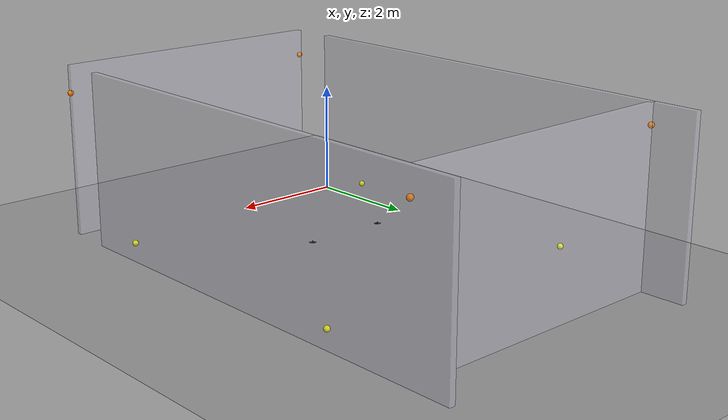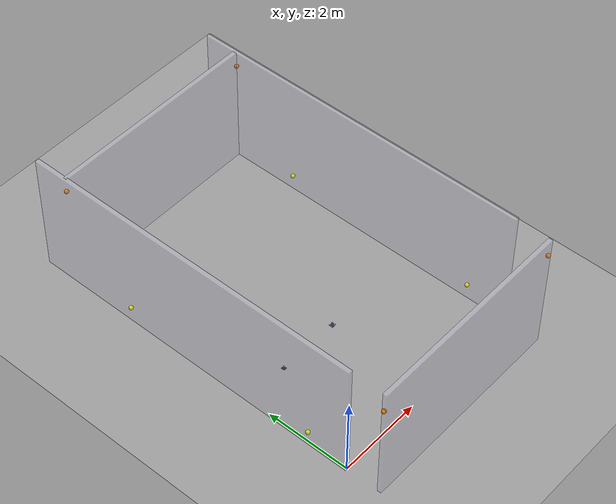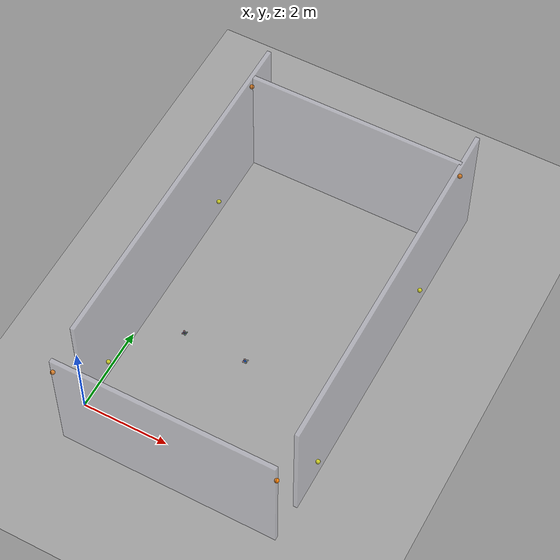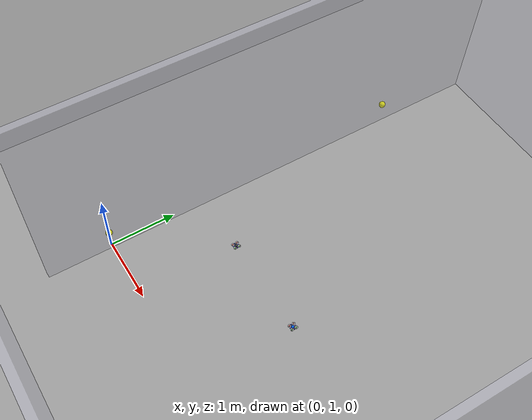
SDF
<?xml version="1.0" ?>
<sdf version="1.9">
  <world name="cf_lab">

    <physics name="1ms" type="ignored">
      <max_step_size>0.001</max_step_size>
      <real_time_factor>1.0</real_time_factor>
    </physics>

    <plugin filename="ignition-gazebo-physics-system"
            name="ignition::gazebo::systems::Physics"/>
    <plugin filename="ignition-gazebo-user-commands-system"
            name="ignition::gazebo::systems::UserCommands"/>
    <plugin filename="ignition-gazebo-scene-broadcaster-system"
            name="ignition::gazebo::systems::SceneBroadcaster"/>

    <!-- Use a single directional light with unique name -->
    <light name="directional_light_1" type="directional">
      <cast_shadows>false</cast_shadows>
      <pose>0 0 10 0 0 0</pose>
      <diffuse>0.8 0.8 0.8 1</diffuse>
      <specular>0.2 0.2 0.2 1</specular>
      <direction>-0.5 0.1 -0.9</direction>
    </light>

    <!-- Floor -->
    <model name="ground_plane">
      <static>true</static>
      <link name="link">
        <collision name="collision">
          <geometry>
            <plane><normal>0 0 1</normal><size>20 20</size></plane>
          </geometry>
        </collision>
        <visual name="visual">
          <geometry>
            <plane><normal>0 0 1</normal><size>20 20</size></plane>
          </geometry>
          <material>
            <ambient>0.4 0.4 0.4 1</ambient>
            <diffuse>0.6 0.6 0.6 1</diffuse>
          </material>
        </visual>
      </link>
    </model>

    <!-- Crazyflie cf231 -->
    <!-- static=false + gravity=false = kinematic body -->
    <!-- set_pose works AND gravity doesn't pull it down -->
    <!-- B-419 walls + 8 LPS anchors (real coordinates), added to match cf_lab.sdf -->
    <model name="wall_x0">
      <static>true</static>
      <pose>0 4.1 1.5 0 0 0</pose>
      <link name="link">
        <collision name="col"><geometry><box><size>0.1 8.2 3.0</size></box></geometry></collision>
        <visual name="vis">
          <geometry><box><size>0.1 8.2 3.0</size></box></geometry>
          <material><ambient>0.8 0.8 0.9 0.3</ambient><diffuse>0.8 0.8 0.9 0.3</diffuse></material>
        </visual>
      </link>
    </model>
    <model name="wall_x5">
      <static>true</static>
      <pose>5.04 4.1 1.5 0 0 0</pose>
      <link name="link">
        <collision name="col"><geometry><box><size>0.1 8.2 3.0</size></box></geometry></collision>
        <visual name="vis">
          <geometry><box><size>0.1 8.2 3.0</size></box></geometry>
          <material><ambient>0.8 0.8 0.9 0.3</ambient><diffuse>0.8 0.8 0.9 0.3</diffuse></material>
        </visual>
      </link>
    </model>
    <model name="wall_yn08">
      <static>true</static>
      <pose>2.52 -0.8 1.5 0 0 0</pose>
      <link name="link">
        <collision name="col"><geometry><box><size>5.04 0.1 3.0</size></box></geometry></collision>
        <visual name="vis">
          <geometry><box><size>5.04 0.1 3.0</size></box></geometry>
          <material><ambient>0.8 0.8 0.9 0.3</ambient><diffuse>0.8 0.8 0.9 0.3</diffuse></material>
        </visual>
      </link>
    </model>
    <model name="wall_y74">
      <static>true</static>
      <pose>2.52 7.4 1.5 0 0 0</pose>
      <link name="link">
        <collision name="col"><geometry><box><size>5.04 0.1 3.0</size></box></geometry></collision>
        <visual name="vis">
          <geometry><box><size>5.04 0.1 3.0</size></box></geometry>
          <material><ambient>0.8 0.8 0.9 0.3</ambient><diffuse>0.8 0.8 0.9 0.3</diffuse></material>
        </visual>
      </link>
    </model>
    <model name="anchor_0"><static>true</static><pose>0.0 1.0 0.3 0 0 0</pose>
      <link name="link"><visual name="vis"><geometry><sphere><radius>0.05</radius></sphere></geometry>
      <material><ambient>1 1 0 1</ambient><diffuse>1 1 0 1</diffuse></material></visual></link></model>
    <model name="anchor_1"><static>true</static><pose>0.0 7.4 2.64 0 0 0</pose>
      <link name="link"><visual name="vis"><geometry><sphere><radius>0.05</radius></sphere></geometry>
      <material><ambient>1 0.5 0 1</ambient><diffuse>1 0.5 0 1</diffuse></material></visual></link></model>
    <model name="anchor_2"><static>true</static><pose>5.04 5.8 0.3 0 0 0</pose>
      <link name="link"><visual name="vis"><geometry><sphere><radius>0.05</radius></sphere></geometry>
      <material><ambient>1 1 0 1</ambient><diffuse>1 1 0 1</diffuse></material></visual></link></model>
    <model name="anchor_3"><static>true</static><pose>5.04 -0.8 2.52 0 0 0</pose>
      <link name="link"><visual name="vis"><geometry><sphere><radius>0.05</radius></sphere></geometry>
      <material><ambient>1 0.5 0 1</ambient><diffuse>1 0.5 0 1</diffuse></material></visual></link></model>
    <model name="anchor_4"><static>true</static><pose>0.0 -0.8 2.52 0 0 0</pose>
      <link name="link"><visual name="vis"><geometry><sphere><radius>0.05</radius></sphere></geometry>
      <material><ambient>1 0.5 0 1</ambient><diffuse>1 0.5 0 1</diffuse></material></visual></link></model>
    <model name="anchor_5"><static>true</static><pose>0.0 5.8 0.3 0 0 0</pose>
      <link name="link"><visual name="vis"><geometry><sphere><radius>0.05</radius></sphere></geometry>
      <material><ambient>1 1 0 1</ambient><diffuse>1 1 0 1</diffuse></material></visual></link></model>
    <model name="anchor_6"><static>true</static><pose>5.04 7.4 2.57 0 0 0</pose>
      <link name="link"><visual name="vis"><geometry><sphere><radius>0.05</radius></sphere></geometry>
      <material><ambient>1 0.5 0 1</ambient><diffuse>1 0.5 0 1</diffuse></material></visual></link></model>
    <model name="anchor_7"><static>true</static><pose>5.04 1.0 0.3 0 0 0</pose>
      <link name="link"><visual name="vis"><geometry><sphere><radius>0.05</radius></sphere></geometry>
      <material><ambient>1 1 0 1</ambient><diffuse>1 1 0 1</diffuse></material></visual></link></model>

    <model name="cf231">
      <pose>1.0 2.5 0.1 0 0 0</pose>
      <static>false</static>
      <link name="base_link">
        <inertial>
          <mass>0.027</mass>
          <inertia>
            <ixx>1.657e-5</ixx><iyy>1.657e-5</iyy><izz>2.9e-5</izz>
            <ixy>0</ixy><ixz>0</ixz><iyz>0</iyz>
          </inertia>
        </inertial>

        <!-- Disable gravity on this link -->
        <gravity>false</gravity>

        <!-- Centre body - dark grey -->
        <visual name="body">
          <pose>0 0 0 0 0 0</pose>
          <geometry><box><size>0.032 0.032 0.016</size></box></geometry>
          <material>
            <ambient>0.15 0.15 0.15 1</ambient>
            <diffuse>0.25 0.25 0.25 1</diffuse>
          </material>
        </visual>

        <!-- Arm along X axis - blue -->
        <visual name="arm_x">
          <pose>0 0 0 0 0 0</pose>
          <geometry><box><size>0.095 0.007 0.003</size></box></geometry>
          <material>
            <ambient>0.05 0.05 0.7 1</ambient>
            <diffuse>0.1 0.1 0.9 1</diffuse>
          </material>
        </visual>

        <!-- Arm along Y axis - blue -->
        <visual name="arm_y">
          <pose>0 0 0 0 0 0</pose>
          <geometry><box><size>0.007 0.095 0.003</size></box></geometry>
          <material>
            <ambient>0.05 0.05 0.7 1</ambient>
            <diffuse>0.1 0.1 0.9 1</diffuse>
          </material>
        </visual>

        <!-- Motor FL (+x+y) - green = FRONT -->
        <visual name="motor_fl">
          <pose>0.0335 0.0335 0.005 0 0 0</pose>
          <geometry><cylinder><radius>0.010</radius><length>0.007</length></cylinder></geometry>
          <material><ambient>0.0 0.7 0.0 1</ambient><diffuse>0.0 0.9 0.0 1</diffuse></material>
        </visual>

        <!-- Propeller FL -->
        <visual name="prop_fl">
          <pose>0.0335 0.0335 0.010 0 0 0</pose>
          <geometry><cylinder><radius>0.023</radius><length>0.001</length></cylinder></geometry>
          <material><ambient>0.7 0.7 0.7 0.5</ambient><diffuse>0.8 0.8 0.8 0.5</diffuse></material>
        </visual>

        <!-- Motor FR (+x-y) - green = FRONT -->
        <visual name="motor_fr">
          <pose>0.0335 -0.0335 0.005 0 0 0</pose>
          <geometry><cylinder><radius>0.010</radius><length>0.007</length></cylinder></geometry>
          <material><ambient>0.0 0.7 0.0 1</ambient><diffuse>0.0 0.9 0.0 1</diffuse></material>
        </visual>

        <!-- Propeller FR -->
        <visual name="prop_fr">
          <pose>0.0335 -0.0335 0.010 0 0 0</pose>
          <geometry><cylinder><radius>0.023</radius><length>0.001</length></cylinder></geometry>
          <material><ambient>0.7 0.7 0.7 0.5</ambient><diffuse>0.8 0.8 0.8 0.5</diffuse></material>
        </visual>

        <!-- Motor RL (-x+y) - red = REAR -->
        <visual name="motor_rl">
          <pose>-0.0335 0.0335 0.005 0 0 0</pose>
          <geometry><cylinder><radius>0.010</radius><length>0.007</length></cylinder></geometry>
          <material><ambient>0.8 0.0 0.0 1</ambient><diffuse>0.9 0.0 0.0 1</diffuse></material>
        </visual>

        <!-- Propeller RL -->
        <visual name="prop_rl">
          <pose>-0.0335 0.0335 0.010 0 0 0</pose>
          <geometry><cylinder><radius>0.023</radius><length>0.001</length></cylinder></geometry>
          <material><ambient>0.7 0.7 0.7 0.5</ambient><diffuse>0.8 0.8 0.8 0.5</diffuse></material>
        </visual>

        <!-- Motor RR (-x-y) - red = REAR -->
        <visual name="motor_rr">
          <pose>-0.0335 -0.0335 0.005 0 0 0</pose>
          <geometry><cylinder><radius>0.010</radius><length>0.007</length></cylinder></geometry>
          <material><ambient>0.8 0.0 0.0 1</ambient><diffuse>0.9 0.0 0.0 1</diffuse></material>
        </visual>

        <!-- Propeller RR -->
        <visual name="prop_rr">
          <pose>-0.0335 -0.0335 0.010 0 0 0</pose>
          <geometry><cylinder><radius>0.023</radius><length>0.001</length></cylinder></geometry>
          <material><ambient>0.7 0.7 0.7 0.5</ambient><diffuse>0.8 0.8 0.8 0.5</diffuse></material>
        </visual>

        <!-- Collision box -->
        <collision name="collision">
          <geometry><box><size>0.092 0.092 0.029</size></box></geometry>
        </collision>

      </link>

      <!-- Pose publisher plugin -->
      <plugin filename="ignition-gazebo-pose-publisher-system"
              name="ignition::gazebo::systems::PosePublisher">
        <publish_link_pose>true</publish_link_pose>
        <publish_nested_model_pose>true</publish_nested_model_pose>
        <update_rate>50</update_rate>
      </plugin>

    </model>

    <!-- Crazyflie cf2 (swarm partner, blue) -->
    <!-- static=false + gravity=false = kinematic body -->
    <!-- set_pose works AND gravity doesn't pull it down -->
    <model name="cf2">
      <pose>2.5 2.5 0.1 0 0 0</pose>
      <static>false</static>
      <link name="base_link">
        <inertial>
          <mass>0.027</mass>
          <inertia>
            <ixx>1.657e-5</ixx><iyy>1.657e-5</iyy><izz>2.9e-5</izz>
            <ixy>0</ixy><ixz>0</ixz><iyz>0</iyz>
          </inertia>
        </inertial>

        <!-- Disable gravity on this link -->
        <gravity>false</gravity>

        <!-- Centre body - dark grey -->
        <visual name="body">
          <pose>0 0 0 0 0 0</pose>
          <geometry><box><size>0.032 0.032 0.016</size></box></geometry>
          <material>
            <ambient>0.0 0.3 0.9 1</ambient>
            <diffuse>0.0 0.4 1.0 1</diffuse>
          </material>
        </visual>

        <!-- Arm along X axis - blue -->
        <visual name="arm_x">
          <pose>0 0 0 0 0 0</pose>
          <geometry><box><size>0.095 0.007 0.003</size></box></geometry>
          <material>
            <ambient>0.05 0.05 0.7 1</ambient>
            <diffuse>0.1 0.1 0.9 1</diffuse>
          </material>
        </visual>

        <!-- Arm along Y axis - blue -->
        <visual name="arm_y">
          <pose>0 0 0 0 0 0</pose>
          <geometry><box><size>0.007 0.095 0.003</size></box></geometry>
          <material>
            <ambient>0.05 0.05 0.7 1</ambient>
            <diffuse>0.1 0.1 0.9 1</diffuse>
          </material>
        </visual>

        <!-- Motor FL (+x+y) - green = FRONT -->
        <visual name="motor_fl">
          <pose>0.0335 0.0335 0.005 0 0 0</pose>
          <geometry><cylinder><radius>0.010</radius><length>0.007</length></cylinder></geometry>
          <material><ambient>0.0 0.7 0.0 1</ambient><diffuse>0.0 0.9 0.0 1</diffuse></material>
        </visual>

        <!-- Propeller FL -->
        <visual name="prop_fl">
          <pose>0.0335 0.0335 0.010 0 0 0</pose>
          <geometry><cylinder><radius>0.023</radius><length>0.001</length></cylinder></geometry>
          <material><ambient>0.7 0.7 0.7 0.5</ambient><diffuse>0.8 0.8 0.8 0.5</diffuse></material>
        </visual>

        <!-- Motor FR (+x-y) - green = FRONT -->
        <visual name="motor_fr">
          <pose>0.0335 -0.0335 0.005 0 0 0</pose>
          <geometry><cylinder><radius>0.010</radius><length>0.007</length></cylinder></geometry>
          <material><ambient>0.0 0.7 0.0 1</ambient><diffuse>0.0 0.9 0.0 1</diffuse></material>
        </visual>

        <!-- Propeller FR -->
        <visual name="prop_fr">
          <pose>0.0335 -0.0335 0.010 0 0 0</pose>
          <geometry><cylinder><radius>0.023</radius><length>0.001</length></cylinder></geometry>
          <material><ambient>0.7 0.7 0.7 0.5</ambient><diffuse>0.8 0.8 0.8 0.5</diffuse></material>
        </visual>

        <!-- Motor RL (-x+y) - red = REAR -->
        <visual name="motor_rl">
          <pose>-0.0335 0.0335 0.005 0 0 0</pose>
          <geometry><cylinder><radius>0.010</radius><length>0.007</length></cylinder></geometry>
          <material><ambient>0.8 0.0 0.0 1</ambient><diffuse>0.9 0.0 0.0 1</diffuse></material>
        </visual>

        <!-- Propeller RL -->
        <visual name="prop_rl">
          <pose>-0.0335 0.0335 0.010 0 0 0</pose>
          <geometry><cylinder><radius>0.023</radius><length>0.001</length></cylinder></geometry>
          <material><ambient>0.7 0.7 0.7 0.5</ambient><diffuse>0.8 0.8 0.8 0.5</diffuse></material>
        </visual>

        <!-- Motor RR (-x-y) - red = REAR -->
        <visual name="motor_rr">
          <pose>-0.0335 -0.0335 0.005 0 0 0</pose>
          <geometry><cylinder><radius>0.010</radius><length>0.007</length></cylinder></geometry>
          <material><ambient>0.8 0.0 0.0 1</ambient><diffuse>0.9 0.0 0.0 1</diffuse></material>
        </visual>

        <!-- Propeller RR -->
        <visual name="prop_rr">
          <pose>-0.0335 -0.0335 0.010 0 0 0</pose>
          <geometry><cylinder><radius>0.023</radius><length>0.001</length></cylinder></geometry>
          <material><ambient>0.7 0.7 0.7 0.5</ambient><diffuse>0.8 0.8 0.8 0.5</diffuse></material>
        </visual>

        <!-- Collision box -->
        <collision name="collision">
          <geometry><box><size>0.092 0.092 0.029</size></box></geometry>
        </collision>

      </link>

      <!-- Pose publisher plugin -->
      <plugin filename="ignition-gazebo-pose-publisher-system"
              name="ignition::gazebo::systems::PosePublisher">
        <publish_link_pose>true</publish_link_pose>
        <publish_nested_model_pose>true</publish_nested_model_pose>
        <update_rate>50</update_rate>
      </plugin>

    </model>

  </world>
</sdf>
